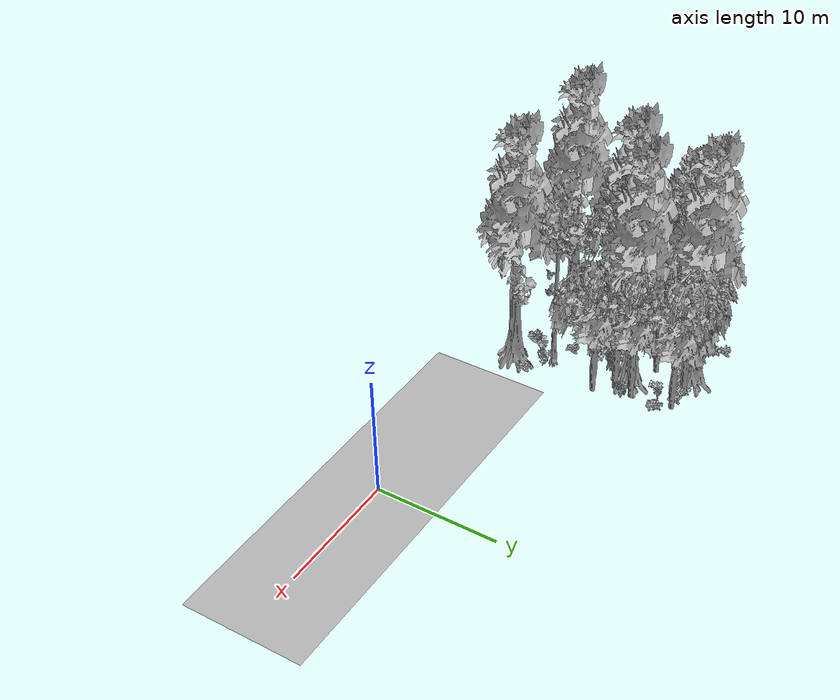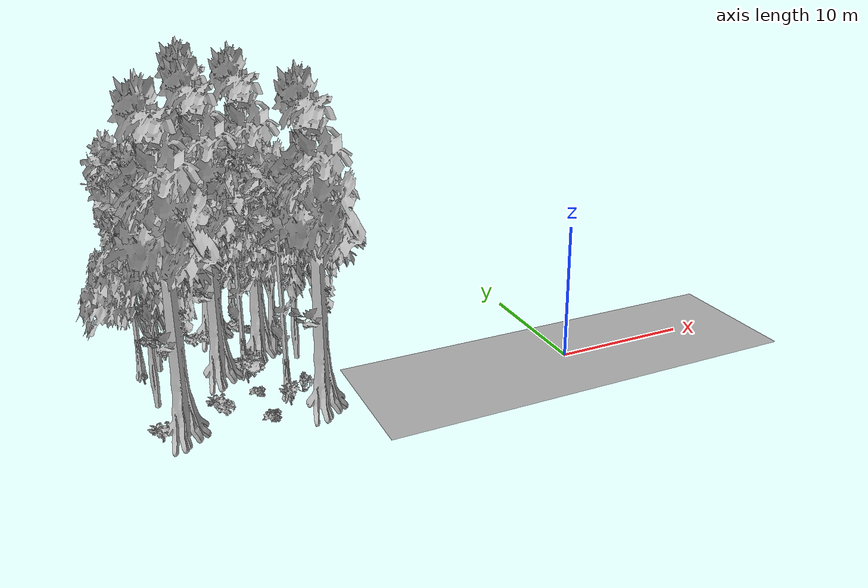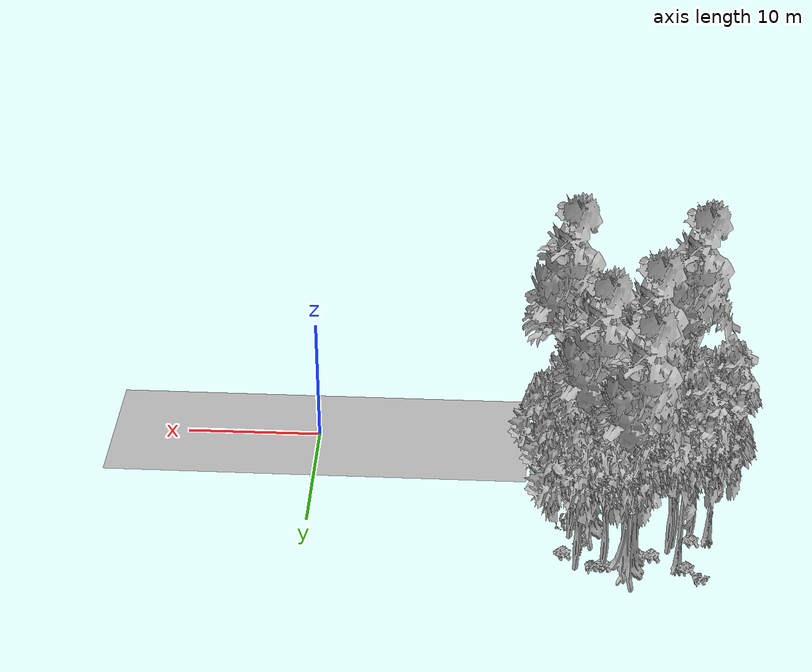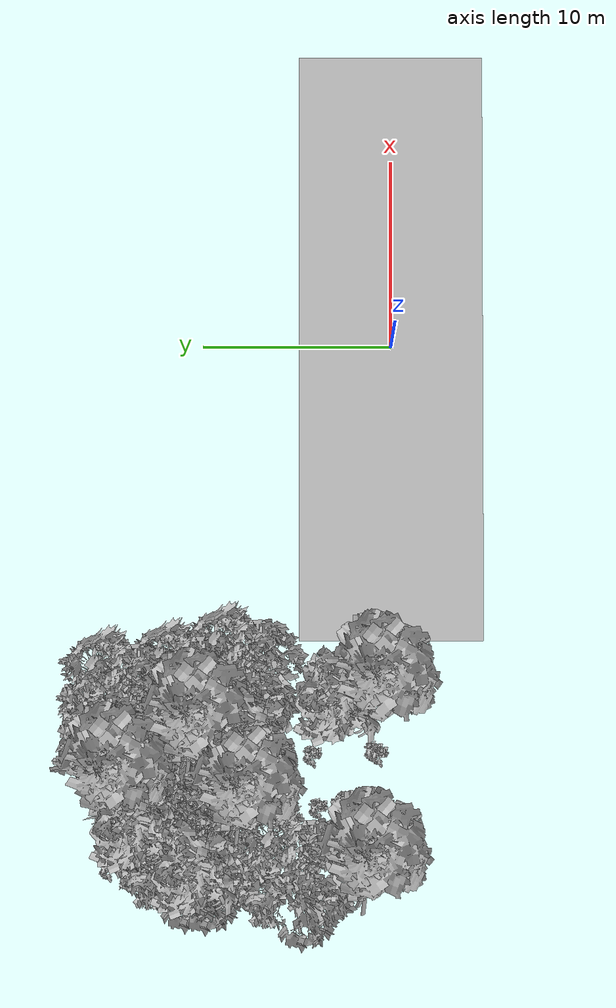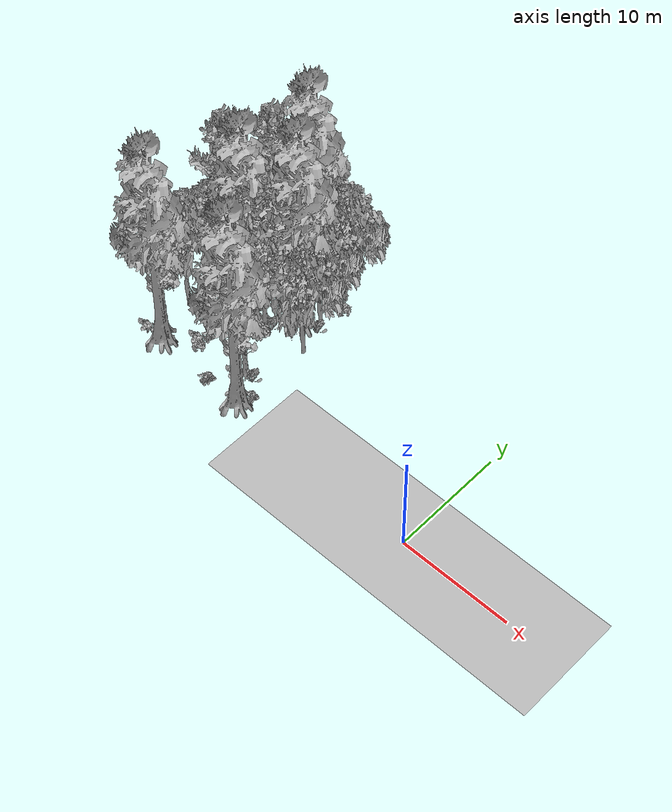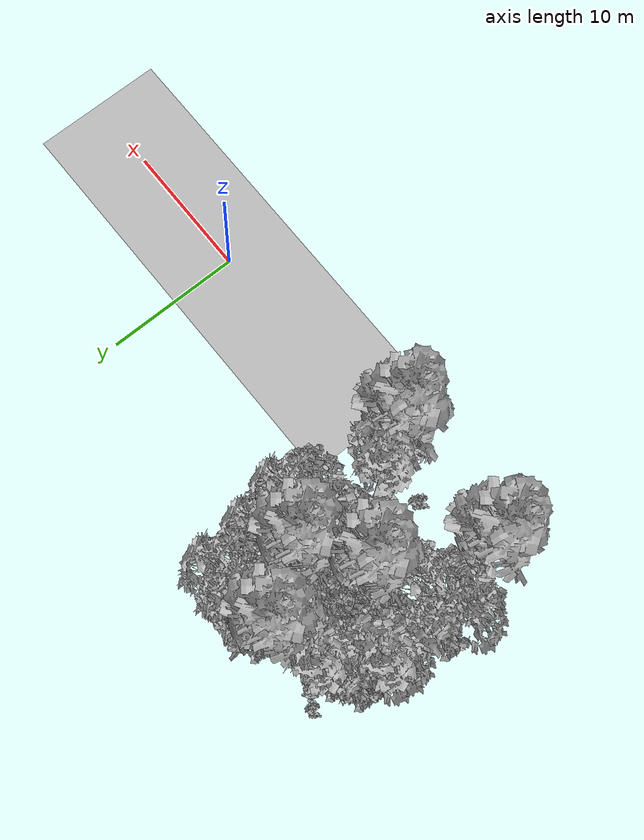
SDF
<sdf version="1.7">
 <world name="default">
  <model name="ground_plane">
   <static>1</static>
   <link name="link">
    <collision name="collision">
     <geometry><plane><normal>0 0 1</normal><size>100 100</size></plane></geometry>
     <surface><contact><ode><min_depth>0.01</min_depth><max_vel>0</max_vel></ode></contact></surface>
    </collision>
    <visual name="grass">
     <cast_shadows>0</cast_shadows>
     <geometry>
      <mesh>
       <scale>0.5814285714285714 0.18142857142857144 0.1</scale>
       <uri>file://grass_plane/meshes/grass_plane.dae</uri>
      </mesh>
     </geometry>
    </visual>
   </link>
  </model>
  <model name="Tree 8">
   <static>1</static>
   <pose>-22.823493398514426 14.292087558246756 0 1.57079 -0 0</pose>
   <link name="link">
    <collision name="collision">
     <geometry><mesh><scale>3.5 5 3.5</scale><uri>model://tree_4/meshes/tree_4.obj</uri></mesh></geometry>
    </collision>
    <visual name="visual">
     <geometry><mesh><scale>3.5 5 3.5</scale><uri>model://tree_4/meshes/tree_4.obj</uri></mesh></geometry>
    </visual>
   </link>
  </model>
  <model name="Tree 16">
   <static>1</static>
   <pose>-23.569645449014402 7.636549871095344 0 1.57079 -0 0</pose>
   <link name="link">
    <collision name="collision">
     <geometry><mesh><scale>3.5 5 3.5</scale><uri>model://tree_4/meshes/tree_4.obj</uri></mesh></geometry>
    </collision>
    <visual name="visual">
     <geometry><mesh><scale>3.5 5 3.5</scale><uri>model://tree_4/meshes/tree_4.obj</uri></mesh></geometry>
    </visual>
   </link>
  </model>
  <model name="Tree 31">
   <static>1</static>
   <pose>-28.263438000430686 5.230313278289948 0 1.57079 -0 0</pose>
   <link name="link">
    <collision name="collision">
     <geometry><mesh><scale>3.5 5 3.5</scale><uri>model://tree_2/meshes/tree_2.obj</uri></mesh></geometry>
    </collision>
    <visual name="visual">
     <geometry><mesh><scale>3.5 5 3.5</scale><uri>model://tree_2/meshes/tree_2.obj</uri></mesh></geometry>
    </visual>
   </link>
  </model>
  <model name="Tree 34">
   <static>1</static>
   <pose>-19.914381480536715 3.428088746504386 0 1.57079 -0 0</pose>
   <link name="link">
    <collision name="collision">
     <geometry><mesh><scale>3.5 5 3.5</scale><uri>model://tree_9/meshes/tree_9.obj</uri></mesh></geometry>
    </collision>
    <visual name="visual">
     <geometry><mesh><scale>3.5 5 3.5</scale><uri>model://tree_9/meshes/tree_9.obj</uri></mesh></geometry>
    </visual>
   </link>
  </model>
  <model name="Tree 52">
   <static>1</static>
   <pose>-26.10179169542775 11.578760492500798 0 1.57079 -0 0</pose>
   <link name="link">
    <collision name="collision">
     <geometry><mesh><scale>3.5 5 3.5</scale><uri>model://tree_2/meshes/tree_2.obj</uri></mesh></geometry>
    </collision>
    <visual name="visual">
     <geometry><mesh><scale>3.5 5 3.5</scale><uri>model://tree_2/meshes/tree_2.obj</uri></mesh></geometry>
    </visual>
   </link>
  </model>
  <model name="Tree 66">
   <static>1</static>
   <pose>-22.733837027240398 11.248789030880396 0 1.57079 -0 0</pose>
   <link name="link">
    <collision name="collision">
     <geometry><mesh><scale>3.5 5 3.5</scale><uri>model://tree_2/meshes/tree_2.obj</uri></mesh></geometry>
    </collision>
    <visual name="visual">
     <geometry><mesh><scale>3.5 5 3.5</scale><uri>model://tree_2/meshes/tree_2.obj</uri></mesh></geometry>
    </visual>
   </link>
  </model>
  <model name="Tree 74">
   <static>1</static>
   <pose>-27.09518691829042 1.2311563809444763 0 1.57079 -0 0</pose>
   <link name="link">
    <collision name="collision">
     <geometry><mesh><scale>3.5 5 3.5</scale><uri>model://tree_4/meshes/tree_4.obj</uri></mesh></geometry>
    </collision>
    <visual name="visual">
     <geometry><mesh><scale>3.5 5 3.5</scale><uri>model://tree_4/meshes/tree_4.obj</uri></mesh></geometry>
    </visual>
   </link>
  </model>
  <model name="Tree 131">
   <static>1</static>
   <pose>-20.109102556848118 10.112787025889585 0 1.57079 -0 0</pose>
   <link name="link">
    <collision name="collision">
     <geometry><mesh><scale>3.5 5 3.5</scale><uri>model://tree_4/meshes/tree_4.obj</uri></mesh></geometry>
    </collision>
    <visual name="visual">
     <geometry><mesh><scale>3.5 5 3.5</scale><uri>model://tree_4/meshes/tree_4.obj</uri></mesh></geometry>
    </visual>
   </link>
  </model>
  <model name="Tree 144">
   <static>1</static>
   <pose>-18.046019684942276 7.985312937144446 0 1.57079 -0 0</pose>
   <link name="link">
    <collision name="collision">
     <geometry><mesh><scale>3.5 5 3.5</scale><uri>model://tree_2/meshes/tree_2.obj</uri></mesh></geometry>
    </collision>
    <visual name="visual">
     <geometry><mesh><scale>3.5 5 3.5</scale><uri>model://tree_2/meshes/tree_2.obj</uri></mesh></geometry>
    </visual>
   </link>
  </model>
  <model name="Tree 172">
   <static>1</static>
   <pose>-26.28882556043448 13.6240797959885 0 1.57079 -0 0</pose>
   <link name="link">
    <collision name="collision">
     <geometry><mesh><scale>3.5 5 3.5</scale><uri>model://tree_9/meshes/tree_9.obj</uri></mesh></geometry>
    </collision>
    <visual name="visual">
     <geometry><mesh><scale>3.5 5 3.5</scale><uri>model://tree_9/meshes/tree_9.obj</uri></mesh></geometry>
    </visual>
   </link>
  </model>
  <model name="Tree 176">
   <static>1</static>
   <pose>-21.180053492738107 14.32471982415575 0 1.57079 -0 0</pose>
   <link name="link">
    <collision name="collision">
     <geometry><mesh><scale>3.5 5 3.5</scale><uri>model://tree_2/meshes/tree_2.obj</uri></mesh></geometry>
    </collision>
    <visual name="visual">
     <geometry><mesh><scale>3.5 5 3.5</scale><uri>model://tree_2/meshes/tree_2.obj</uri></mesh></geometry>
    </visual>
   </link>
  </model>
  <model name="Tree 275">
   <static>1</static>
   <pose>-18.17721957800044 0.7877942561457658 0 1.57079 -0 0</pose>
   <link name="link">
    <collision name="collision">
     <geometry><mesh><scale>3.5 5 3.5</scale><uri>model://tree_4/meshes/tree_4.obj</uri></mesh></geometry>
    </collision>
    <visual name="visual">
     <geometry><mesh><scale>3.5 5 3.5</scale><uri>model://tree_4/meshes/tree_4.obj</uri></mesh></geometry>
    </visual>
   </link>
  </model>
  <model name="Tree 298">
   <static>1</static>
   <pose>-25.778832045818046 12.18181865000783 0 1.57079 -0 0</pose>
   <link name="link">
    <collision name="collision">
     <geometry><mesh><scale>3.5 5 3.5</scale><uri>model://tree_2/meshes/tree_2.obj</uri></mesh></geometry>
    </collision>
    <visual name="visual">
     <geometry><mesh><scale>3.5 5 3.5</scale><uri>model://tree_2/meshes/tree_2.obj</uri></mesh></geometry>
    </visual>
   </link>
  </model>
  <model name="Tree 331">
   <static>1</static>
   <pose>-18.90354311942638 10.891904594252974 0 1.57079 -0 0</pose>
   <link name="link">
    <collision name="collision">
     <geometry><mesh><scale>3.5 5 3.5</scale><uri>model://tree_2/meshes/tree_2.obj</uri></mesh></geometry>
    </collision>
    <visual name="visual">
     <geometry><mesh><scale>3.5 5 3.5</scale><uri>model://tree_2/meshes/tree_2.obj</uri></mesh></geometry>
    </visual>
   </link>
  </model>
  <model name="Tree 375">
   <static>1</static>
   <pose>-27.429764346363225 10.174426578998592 0 1.57079 -0 0</pose>
   <link name="link">
    <collision name="collision">
     <geometry><mesh><scale>3.5 5 3.5</scale><uri>model://tree_2/meshes/tree_2.obj</uri></mesh></geometry>
    </collision>
    <visual name="visual">
     <geometry><mesh><scale>3.5 5 3.5</scale><uri>model://tree_2/meshes/tree_2.obj</uri></mesh></geometry>
    </visual>
   </link>
  </model>
  <model name="Tree 383">
   <static>1</static>
   <pose>-19.34245782835679 9.298393972617419 0 1.57079 -0 0</pose>
   <link name="link">
    <collision name="collision">
     <geometry><mesh><scale>3.5 5 3.5</scale><uri>model://tree_2/meshes/tree_2.obj</uri></mesh></geometry>
    </collision>
    <visual name="visual">
     <geometry><mesh><scale>3.5 5 3.5</scale><uri>model://tree_2/meshes/tree_2.obj</uri></mesh></geometry>
    </visual>
   </link>
  </model>
  <model name="Tree 411">
   <static>1</static>
   <pose>-21.849984243197447 7.6641783398686805 0 1.57079 -0 0</pose>
   <link name="link">
    <collision name="collision">
     <geometry><mesh><scale>3.5 5 3.5</scale><uri>model://tree_9/meshes/tree_9.obj</uri></mesh></geometry>
    </collision>
    <visual name="visual">
     <geometry><mesh><scale>3.5 5 3.5</scale><uri>model://tree_9/meshes/tree_9.obj</uri></mesh></geometry>
    </visual>
   </link>
  </model>
  <model name="Tree 419">
   <static>1</static>
   <pose>-28.57114072505234 10.577927486372392 0 1.57079 -0 0</pose>
   <link name="link">
    <collision name="collision">
     <geometry><mesh><scale>3.5 5 3.5</scale><uri>model://tree_9/meshes/tree_9.obj</uri></mesh></geometry>
    </collision>
    <visual name="visual">
     <geometry><mesh><scale>3.5 5 3.5</scale><uri>model://tree_9/meshes/tree_9.obj</uri></mesh></geometry>
    </visual>
   </link>
  </model>
  <model name="Tree 437">
   <static>1</static>
   <pose>-19.287163526253096 14.213527148886985 0 1.57079 -0 0</pose>
   <link name="link">
    <collision name="collision">
     <geometry><mesh><scale>3.5 5 3.5</scale><uri>model://tree_2/meshes/tree_2.obj</uri></mesh></geometry>
    </collision>
    <visual name="visual">
     <geometry><mesh><scale>3.5 5 3.5</scale><uri>model://tree_2/meshes/tree_2.obj</uri></mesh></geometry>
    </visual>
   </link>
  </model>
  <model name="Tree 448">
   <static>1</static>
   <pose>-27.317729146053864 11.212787352836322 0 1.57079 -0 0</pose>
   <link name="link">
    <collision name="collision">
     <geometry><mesh><scale>3.5 5 3.5</scale><uri>model://tree_2/meshes/tree_2.obj</uri></mesh></geometry>
    </collision>
    <visual name="visual">
     <geometry><mesh><scale>3.5 5 3.5</scale><uri>model://tree_2/meshes/tree_2.obj</uri></mesh></geometry>
    </visual>
   </link>
  </model>
  <model name="Bush 20">
   <static>1</static>
   <pose>-26.763107802172446 14.392217675616937 0 1.57079 -0 0</pose>
   <link name="link">
    <collision name="collision">
     <geometry><mesh><scale>2 2 2</scale><uri>model://bush_3/meshes/bush_3.obj</uri></mesh></geometry>
     <surface><contact><collide_without_contact>false</collide_without_contact></contact></surface>
    </collision>
    <visual name="visual">
     <geometry><mesh><scale>2 2 2</scale><uri>model://bush_3/meshes/bush_3.obj</uri></mesh></geometry>
    </visual>
   </link>
  </model>
  <model name="Bush 26">
   <static>1</static>
   <pose>-27.24055737844148 11.438097490317126 0 1.57079 -0 0</pose>
   <link name="link">
    <collision name="collision">
     <geometry><mesh><scale>2 2 2</scale><uri>model://bush_3/meshes/bush_3.obj</uri></mesh></geometry>
     <surface><contact><collide_without_contact>false</collide_without_contact></contact></surface>
    </collision>
    <visual name="visual">
     <geometry><mesh><scale>2 2 2</scale><uri>model://bush_3/meshes/bush_3.obj</uri></mesh></geometry>
    </visual>
   </link>
  </model>
  <model name="Bush 27">
   <static>1</static>
   <pose>-17.7563308832295 1.9461746464881706 0 1.57079 -0 0</pose>
   <link name="link">
    <collision name="collision">
     <geometry><mesh><scale>2 2 2</scale><uri>model://bush_2/meshes/bush_2.obj</uri></mesh></geometry>
     <surface><contact><collide_without_contact>false</collide_without_contact></contact></surface>
    </collision>
    <visual name="visual">
     <geometry><mesh><scale>2 2 2</scale><uri>model://bush_2/meshes/bush_2.obj</uri></mesh></geometry>
    </visual>
   </link>
  </model>
  <model name="Bush 47">
   <static>1</static>
   <pose>-24.251675991456054 2.6105537827746055 0 1.57079 -0 0</pose>
   <link name="link">
    <collision name="collision">
     <geometry><mesh><scale>2 2 2</scale><uri>model://bush_3/meshes/bush_3.obj</uri></mesh></geometry>
     <surface><contact><collide_without_contact>false</collide_without_contact></contact></surface>
    </collision>
    <visual name="visual">
     <geometry><mesh><scale>2 2 2</scale><uri>model://bush_3/meshes/bush_3.obj</uri></mesh></geometry>
    </visual>
   </link>
  </model>
  <model name="Bush 56">
   <static>1</static>
   <pose>-21.754789120298017 0.658741457222753 0 1.57079 -0 0</pose>
   <link name="link">
    <collision name="collision">
     <geometry><mesh><scale>2 2 2</scale><uri>model://bush_2/meshes/bush_2.obj</uri></mesh></geometry>
     <surface><contact><collide_without_contact>false</collide_without_contact></contact></surface>
    </collision>
    <visual name="visual">
     <geometry><mesh><scale>2 2 2</scale><uri>model://bush_2/meshes/bush_2.obj</uri></mesh></geometry>
    </visual>
   </link>
  </model>
  <model name="Bush 108">
   <static>1</static>
   <pose>-19.96774079195197 2.2489484533732202 0 1.57079 -0 0</pose>
   <link name="link">
    <collision name="collision">
     <geometry><mesh><scale>2 2 2</scale><uri>model://bush_0/meshes/bush_0.obj</uri></mesh></geometry>
     <surface><contact><collide_without_contact>false</collide_without_contact></contact></surface>
    </collision>
    <visual name="visual">
     <geometry><mesh><scale>2 2 2</scale><uri>model://bush_0/meshes/bush_0.obj</uri></mesh></geometry>
    </visual>
   </link>
  </model>
  <model name="Bush 119">
   <static>1</static>
   <pose>-20.988311961601106 14.34187944089259 0 1.57079 -0 0</pose>
   <link name="link">
    <collision name="collision">
     <geometry><mesh><scale>2 2 2</scale><uri>model://bush_3/meshes/bush_3.obj</uri></mesh></geometry>
     <surface><contact><collide_without_contact>false</collide_without_contact></contact></surface>
    </collision>
    <visual name="visual">
     <geometry><mesh><scale>2 2 2</scale><uri>model://bush_3/meshes/bush_3.obj</uri></mesh></geometry>
    </visual>
   </link>
  </model>
  <model name="Bush 120">
   <static>1</static>
   <pose>-18.555945621261746 10.197995362739995 0 1.57079 -0 0</pose>
   <link name="link">
    <collision name="collision">
     <geometry><mesh><scale>2 2 2</scale><uri>model://bush_4/meshes/bush_4.obj</uri></mesh></geometry>
     <surface><contact><collide_without_contact>false</collide_without_contact></contact></surface>
    </collision>
    <visual name="visual">
     <geometry><mesh><scale>2 2 2</scale><uri>model://bush_4/meshes/bush_4.obj</uri></mesh></geometry>
    </visual>
   </link>
  </model>
  <model name="Bush 124">
   <static>1</static>
   <pose>-21.813299076063196 4.182104207961238 0 1.57079 -0 0</pose>
   <link name="link">
    <collision name="collision">
     <geometry><mesh><scale>2 2 2</scale><uri>model://bush_2/meshes/bush_2.obj</uri></mesh></geometry>
     <surface><contact><collide_without_contact>false</collide_without_contact></contact></surface>
    </collision>
    <visual name="visual">
     <geometry><mesh><scale>2 2 2</scale><uri>model://bush_2/meshes/bush_2.obj</uri></mesh></geometry>
    </visual>
   </link>
  </model>
  <model name="Bush 141">
   <static>1</static>
   <pose>-22.113957928030036 8.003789096576867 0 1.57079 -0 0</pose>
   <link name="link">
    <collision name="collision">
     <geometry><mesh><scale>2 2 2</scale><uri>model://bush_3/meshes/bush_3.obj</uri></mesh></geometry>
     <surface><contact><collide_without_contact>false</collide_without_contact></contact></surface>
    </collision>
    <visual name="visual">
     <geometry><mesh><scale>2 2 2</scale><uri>model://bush_3/meshes/bush_3.obj</uri></mesh></geometry>
    </visual>
   </link>
  </model>
  <model name="Bush 144">
   <static>1</static>
   <pose>-24.67021488723998 2.7435676142622256 0 1.57079 -0 0</pose>
   <link name="link">
    <collision name="collision">
     <geometry><mesh><scale>2 2 2</scale><uri>model://bush_0/meshes/bush_0.obj</uri></mesh></geometry>
     <surface><contact><collide_without_contact>false</collide_without_contact></contact></surface>
    </collision>
    <visual name="visual">
     <geometry><mesh><scale>2 2 2</scale><uri>model://bush_0/meshes/bush_0.obj</uri></mesh></geometry>
    </visual>
   </link>
  </model>
  <model name="Bush 148">
   <static>1</static>
   <pose>-28.4952139984114 0.8492780881523085 0 1.57079 -0 0</pose>
   <link name="link">
    <collision name="collision">
     <geometry><mesh><scale>2 2 2</scale><uri>model://bush_0/meshes/bush_0.obj</uri></mesh></geometry>
     <surface><contact><collide_without_contact>false</collide_without_contact></contact></surface>
    </collision>
    <visual name="visual">
     <geometry><mesh><scale>2 2 2</scale><uri>model://bush_0/meshes/bush_0.obj</uri></mesh></geometry>
    </visual>
   </link>
  </model>
  <model name="Bush 150">
   <static>1</static>
   <pose>-18.856797302071442 3.0745884972767605 0 1.57079 -0 0</pose>
   <link name="link">
    <collision name="collision">
     <geometry><mesh><scale>2 2 2</scale><uri>model://bush_4/meshes/bush_4.obj</uri></mesh></geometry>
     <surface><contact><collide_without_contact>false</collide_without_contact></contact></surface>
    </collision>
    <visual name="visual">
     <geometry><mesh><scale>2 2 2</scale><uri>model://bush_4/meshes/bush_4.obj</uri></mesh></geometry>
    </visual>
   </link>
  </model>
  <model name="Bush 167">
   <static>1</static>
   <pose>-21.583461164523012 0.9344376892969031 0 1.57079 -0 0</pose>
   <link name="link">
    <collision name="collision">
     <geometry><mesh><scale>2 2 2</scale><uri>model://bush_2/meshes/bush_2.obj</uri></mesh></geometry>
     <surface><contact><collide_without_contact>false</collide_without_contact></contact></surface>
    </collision>
    <visual name="visual">
     <geometry><mesh><scale>2 2 2</scale><uri>model://bush_2/meshes/bush_2.obj</uri></mesh></geometry>
    </visual>
   </link>
  </model>
  <model name="Bush 187">
   <static>1</static>
   <pose>-24.608852665182155 3.868316521116956 0 1.57079 -0 0</pose>
   <link name="link">
    <collision name="collision">
     <geometry><mesh><scale>2 2 2</scale><uri>model://bush_2/meshes/bush_2.obj</uri></mesh></geometry>
     <surface><contact><collide_without_contact>false</collide_without_contact></contact></surface>
    </collision>
    <visual name="visual">
     <geometry><mesh><scale>2 2 2</scale><uri>model://bush_2/meshes/bush_2.obj</uri></mesh></geometry>
    </visual>
   </link>
  </model>
  <model name="Bush 196">
   <static>1</static>
   <pose>-24.412690871365925 13.204190030948396 0 1.57079 -0 0</pose>
   <link name="link">
    <collision name="collision">
     <geometry><mesh><scale>2 2 2</scale><uri>model://bush_3/meshes/bush_3.obj</uri></mesh></geometry>
     <surface><contact><collide_without_contact>false</collide_without_contact></contact></surface>
    </collision>
    <visual name="visual">
     <geometry><mesh><scale>2 2 2</scale><uri>model://bush_3/meshes/bush_3.obj</uri></mesh></geometry>
    </visual>
   </link>
  </model>
  <model name="Bush 211">
   <static>1</static>
   <pose>-19.534353950721588 12.901650365856362 0 1.57079 -0 0</pose>
   <link name="link">
    <collision name="collision">
     <geometry><mesh><scale>2 2 2</scale><uri>model://bush_5/meshes/bush_5.obj</uri></mesh></geometry>
     <surface><contact><collide_without_contact>false</collide_without_contact></contact></surface>
    </collision>
    <visual name="visual">
     <geometry><mesh><scale>2 2 2</scale><uri>model://bush_5/meshes/bush_5.obj</uri></mesh></geometry>
    </visual>
   </link>
  </model>
  <model name="Bush 241">
   <static>1</static>
   <pose>-21.47817022279284 6.4260617012180425 0 1.57079 -0 0</pose>
   <link name="link">
    <collision name="collision">
     <geometry><mesh><scale>2 2 2</scale><uri>model://bush_1/meshes/bush_1.obj</uri></mesh></geometry>
     <surface><contact><collide_without_contact>false</collide_without_contact></contact></surface>
    </collision>
    <visual name="visual">
     <geometry><mesh><scale>2 2 2</scale><uri>model://bush_1/meshes/bush_1.obj</uri></mesh></geometry>
    </visual>
   </link>
  </model>
  <model name="Bush 246">
   <static>1</static>
   <pose>-21.44711938829248 7.940413004297973 0 1.57079 -0 0</pose>
   <link name="link">
    <collision name="collision">
     <geometry><mesh><scale>2 2 2</scale><uri>model://bush_4/meshes/bush_4.obj</uri></mesh></geometry>
     <surface><contact><collide_without_contact>false</collide_without_contact></contact></surface>
    </collision>
    <visual name="visual">
     <geometry><mesh><scale>2 2 2</scale><uri>model://bush_4/meshes/bush_4.obj</uri></mesh></geometry>
    </visual>
   </link>
  </model>
  <model name="Bush 249">
   <static>1</static>
   <pose>-18.24711440313528 13.215424656262844 0 1.57079 -0 0</pose>
   <link name="link">
    <collision name="collision">
     <geometry><mesh><scale>2 2 2</scale><uri>model://bush_3/meshes/bush_3.obj</uri></mesh></geometry>
     <surface><contact><collide_without_contact>false</collide_without_contact></contact></surface>
    </collision>
    <visual name="visual">
     <geometry><mesh><scale>2 2 2</scale><uri>model://bush_3/meshes/bush_3.obj</uri></mesh></geometry>
    </visual>
   </link>
  </model>
  <model name="Bush 284">
   <static>1</static>
   <pose>-20.40942328337905 13.99287022612803 0 1.57079 -0 0</pose>
   <link name="link">
    <collision name="collision">
     <geometry><mesh><scale>2 2 2</scale><uri>model://bush_2/meshes/bush_2.obj</uri></mesh></geometry>
     <surface><contact><collide_without_contact>false</collide_without_contact></contact></surface>
    </collision>
    <visual name="visual">
     <geometry><mesh><scale>2 2 2</scale><uri>model://bush_2/meshes/bush_2.obj</uri></mesh></geometry>
    </visual>
   </link>
  </model>
  <model name="Bush 331">
   <static>1</static>
   <pose>-23.387751847989573 13.165055391582055 0 1.57079 -0 0</pose>
   <link name="link">
    <collision name="collision">
     <geometry><mesh><scale>2 2 2</scale><uri>model://bush_3/meshes/bush_3.obj</uri></mesh></geometry>
     <surface><contact><collide_without_contact>false</collide_without_contact></contact></surface>
    </collision>
    <visual name="visual">
     <geometry><mesh><scale>2 2 2</scale><uri>model://bush_3/meshes/bush_3.obj</uri></mesh></geometry>
    </visual>
   </link>
  </model>
  <model name="Bush 336">
   <static>1</static>
   <pose>-27.83732398626072 14.941486739056941 0 1.57079 -0 0</pose>
   <link name="link">
    <collision name="collision">
     <geometry><mesh><scale>2 2 2</scale><uri>model://bush_2/meshes/bush_2.obj</uri></mesh></geometry>
     <surface><contact><collide_without_contact>false</collide_without_contact></contact></surface>
    </collision>
    <visual name="visual">
     <geometry><mesh><scale>2 2 2</scale><uri>model://bush_2/meshes/bush_2.obj</uri></mesh></geometry>
    </visual>
   </link>
  </model>
 </world>
</sdf>
